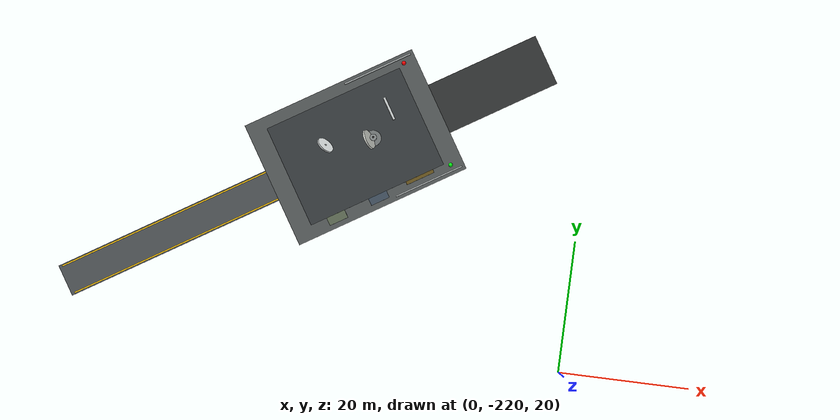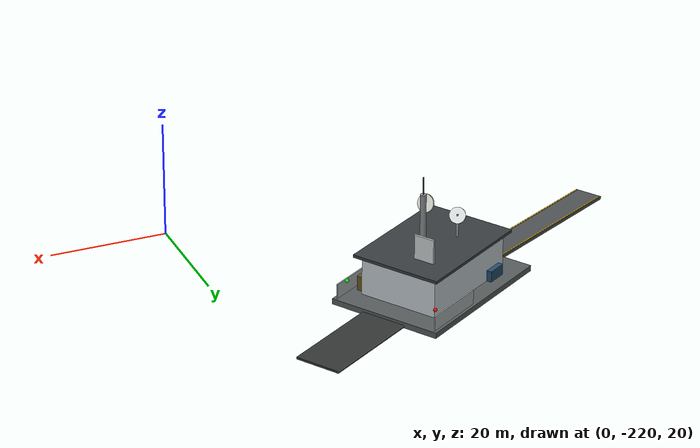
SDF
<sdf version="1.10">
 <world name="heterogeneous_332_vrx_water">
  <plugin filename="gz-sim-physics-system" name="gz::sim::systems::Physics"/>
  <plugin filename="gz-sim-user-commands-system" name="gz::sim::systems::UserCommands"/>
  <plugin filename="gz-sim-scene-broadcaster-system" name="gz::sim::systems::SceneBroadcaster"/>
  <plugin filename="gz-sim-contact-system" name="gz::sim::systems::Contact"/>
  <plugin filename="gz-sim-sensors-system" name="gz::sim::systems::Sensors">
   <render_engine>ogre2</render_engine>
  </plugin>
  <plugin filename="gz-sim-imu-system" name="gz::sim::systems::Imu"/>
  <plugin filename="gz-sim-air-pressure-system" name="gz::sim::systems::AirPressure"/>
  <plugin filename="gz-sim-magnetometer-system" name="gz::sim::systems::Magnetometer"/>
  <plugin filename="gz-sim-navsat-system" name="gz::sim::systems::NavSat"/>
  <plugin filename="libVrxWavefieldPublisher.so" name="vrx::VrxWavefieldPublisher">
   <publish_period>2.0</publish_period>
   <wavefield>
    <topic>/vrx/wavefield/parameters</topic>
    <size>1050 900</size>
    <cell_count>175 150</cell_count>
    <wave>
     <model>PMS</model>
     <number>3</number>
     <period>6.0</period>
     <scale>1.35</scale>
     <gain>0.65</gain>
     <direction>0.25</direction>
     <angle>0.5</angle>
     <steepness>0.35</steepness>
     <tau>2.0</tau>
    </wave>
   </wavefield>
  </plugin>
  <plugin filename="gz-sim-buoyancy-system" name="gz::sim::systems::Buoyancy">
   <uniform_fluid_density>1025</uniform_fluid_density>
   <enable>usv_01::hull</enable>
   <enable>usv_02::hull</enable>
   <enable>usv_03::hull</enable>
  </plugin>
  <physics type="ode">
   <max_step_size>0.004</max_step_size>
   <real_time_factor>1</real_time_factor>
   <real_time_update_rate>250</real_time_update_rate>
  </physics>
  <gravity>0 0 -9.8</gravity>
  <scene>
   <grid>false</grid>
   <ambient>0.75 0.78 0.82 1</ambient>
   <background>0.82 0.9 0.96 1</background>
   <shadows>true</shadows>
  </scene>
  <spherical_coordinates>
   <surface_model>EARTH_WGS84</surface_model>
   <world_frame_orientation>ENU</world_frame_orientation>
   <latitude_deg>47.397971057728974</latitude_deg>
   <longitude_deg>8.5461637398001464</longitude_deg>
   <elevation>0</elevation>
   <heading_deg>0</heading_deg>
  </spherical_coordinates>
  <model name="ocean_plane">
   <static>true</static>
   <link name="ocean_link">
    <collision name="ocean_collision">
     <geometry><plane><normal>0 0 1</normal><size>1050 900</size></plane></geometry>
    </collision>
   </link>
  </model>
  <include>
   <uri>model://mountain_shore_invisible_collision</uri>
   <name>mountain_shore_invisible_collision</name>
   <pose>0 0 8 3.141592653589793 0 0</pose>
  </include>
  <include>
   <uri>model://mountain_shore_command_base</uri>
   <name>shore_command_base</name>
   <pose>-35 -190 17.5 0 0 0.559</pose>
  </include>
  <light name="sun" type="directional">
   <pose>0 0 100 0 0 0</pose>
   <intensity>1.1</intensity>
   <direction>-0.35 0.2 -0.92</direction>
   <diffuse>0.92 0.92 0.88 1</diffuse>
   <specular>0.25 0.25 0.25 1</specular>
  </light>
 </world>
</sdf>

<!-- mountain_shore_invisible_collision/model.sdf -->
<sdf version="1.9">
  <model name="Mountain_Shore_Invisible_Collision">
    <static>true</static>
    <link name="mountain_shore_boundary">
      <collision name="Mountain_Shore_Collision_01"><pose>-332.08 -241.36 4 0 0 0.0677</pose><geometry><box><size>146.34 5 12</size></box></geometry></collision>
      <collision name="Mountain_Shore_Collision_02"><pose>-244.89 -242.84 4 0 0 -0.3117</pose><geometry><box><size>49.34 5 12</size></box></geometry></collision>
      <collision name="Mountain_Shore_Collision_03"><pose>-191.88 -216.61 4 0 0 0.8234</pose><geometry><box><size>93.85 5 12</size></box></geometry></collision>
      <collision name="Mountain_Shore_Collision_04"><pose>-145.65 -179.86 4 0 0 0.3268</pose><geometry><box><size>47.49 5 12</size></box></geometry></collision>
      <collision name="Mountain_Shore_Collision_05"><pose>-126.27 -149.94 4 0 0 1.2692</pose><geometry><box><size>46.96 5 12</size></box></geometry></collision>
      <collision name="Mountain_Shore_Collision_06"><pose>-91.87 -147.04 4 0 0 -0.3897</pose><geometry><box><size>64.89 5 12</size></box></geometry></collision>
      <collision name="Mountain_Shore_Collision_07"><pose>-19.09 -126.09 4 0 0 0.6336</pose><geometry><box><size>113.66 5 12</size></box></geometry></collision>
      <collision name="Mountain_Shore_Collision_08"><pose>54.42 -92.67 4 0 0 0.0881</pose><geometry><box><size>74.16 5 12</size></box></geometry></collision>
      <collision name="Mountain_Shore_Collision_09"><pose>155.82 -61.20 4 0 0 0.3979</pose><geometry><box><size>153.89 5 12</size></box></geometry></collision>
      <collision name="Mountain_Shore_Collision_10"><pose>228.66 2.89 4 0 0 1.4737</pose><geometry><box><size>73.35 5 12</size></box></geometry></collision>
      <collision name="Mountain_Shore_Collision_11"><pose>290.07 97.94 4 0 0 0.8303</pose><geometry><box><size>183.69 5 12</size></box></geometry></collision>
      <collision name="Mountain_Shore_Collision_12"><pose>343.00 173.03 4 0 0 2.4954</pose><geometry><box><size>22.50 5 12</size></box></geometry></collision>
      <collision name="Mountain_Shore_Collision_13"><pose>360.34 185.13 4 0 0 0.5488</pose><geometry><box><size>62.97 5 12</size></box></geometry></collision>
      <collision name="Mountain_Shore_Collision_14"><pose>392.71 224.76 4 0 0 1.2687</pose><geometry><box><size>56.32 5 12</size></box></geometry></collision>
      <collision name="Mountain_Shore_Collision_15"><pose>399.96 271.69 4 0 0 1.5762</pose><geometry><box><size>53.30 5 12</size></box></geometry></collision>
      <collision name="Mountain_Shore_Collision_16"><pose>367.74 312.46 4 0 0 2.6881</pose><geometry><box><size>74.41 5 12</size></box></geometry></collision>
      <collision name="Mountain_Shore_Collision_17"><pose>264.69 290.91 4 0 0 -2.6637</pose><geometry><box><size>164.81 5 12</size></box></geometry></collision>
      <collision name="Mountain_Shore_Collision_18"><pose>135.92 261.72 4 0 0 3.0370</pose><geometry><box><size>131.47 5 12</size></box></geometry></collision>
      <collision name="Mountain_Shore_Collision_19"><pose>20.50 254.76 4 0 0 -2.8941</pose><geometry><box><size>116.56 5 12</size></box></geometry></collision>
      <collision name="Mountain_Shore_Collision_20"><pose>-65.82 190.91 4 0 0 -2.1409</pose><geometry><box><size>124.02 5 12</size></box></geometry></collision>
      <collision name="Mountain_Shore_Collision_21"><pose>-87.88 102.00 4 0 0 -1.3125</pose><geometry><box><size>84.31 5 12</size></box></geometry></collision>
      <collision name="Mountain_Shore_Collision_22"><pose>-61.73 62.98 4 0 0 -0.5611</pose><geometry><box><size>32.60 5 12</size></box></geometry></collision>
      <collision name="Mountain_Shore_Collision_23"><pose>-73.05 26.77 4 0 0 -2.0897</pose><geometry><box><size>73.09 5 12</size></box></geometry></collision>
      <collision name="Mountain_Shore_Collision_24"><pose>-92.87 -31.93 4 0 0 -1.6800</pose><geometry><box><size>66.12 5 12</size></box></geometry></collision>
      <collision name="Mountain_Shore_Collision_25"><pose>-114.19 -73.24 4 0 0 -2.8049</pose><geometry><box><size>57.69 5 12</size></box></geometry></collision>
      <collision name="Mountain_Shore_Collision_26"><pose>-142.10 -92.96 4 0 0 -1.5143</pose><geometry><box><size>38.18 5 12</size></box></geometry></collision>
      <collision name="Mountain_Shore_Collision_27"><pose>-151.46 -90.64 4 0 0 2.0818</pose><geometry><box><size>51.84 5 12</size></box></geometry></collision>
      <collision name="Mountain_Shore_Collision_28"><pose>-174.88 -80.84 4 0 0 -2.3288</pose><geometry><box><size>46.63 5 12</size></box></geometry></collision>
      <collision name="Mountain_Shore_Collision_29"><pose>-201.18 -98.86 4 0 0 2.9660</pose><geometry><box><size>38.93 5 12</size></box></geometry></collision>
      <collision name="Mountain_Shore_Collision_30"><pose>-223.18 -99.83 4 0 0 -1.9625</pose><geometry><box><size>27.79 5 12</size></box></geometry></collision>
      <collision name="Mountain_Shore_Collision_31"><pose>-258.70 -113.46 4 0 0 3.1122</pose><geometry><box><size>78.69 5 12</size></box></geometry></collision>
      <collision name="Mountain_Shore_Collision_32"><pose>-309.91 -114.00 4 0 0 -2.5678</pose><geometry><box><size>40.93 5 12</size></box></geometry></collision>
      <collision name="Mountain_Shore_Collision_33"><pose>-324.77 -139.32 4 0 0 -1.5089</pose><geometry><box><size>33.61 5 12</size></box></geometry></collision>
      <collision name="Mountain_Shore_Collision_34"><pose>-363.64 -194.27 4 0 0 -2.3049</pose><geometry><box><size>129.48 5 12</size></box></geometry></collision>

      <!-- Cylinder joins bridge the different sea-side offsets at every turn. -->
      <collision name="Mountain_Shore_Join_01"><pose>-401.36 -242.05 4 0 0 0</pose><geometry><cylinder><radius>7</radius><length>12</length></cylinder></geometry></collision>
      <collision name="Mountain_Shore_Join_02"><pose>-263.34 -232.70 4 0 0 0</pose><geometry><cylinder><radius>7</radius><length>12</length></cylinder></geometry></collision>
      <collision name="Mountain_Shore_Join_03"><pose>-223.99 -245.37 4 0 0 0</pose><geometry><cylinder><radius>7</radius><length>12</length></cylinder></geometry></collision>
      <collision name="Mountain_Shore_Join_04"><pose>-165.64 -182.41 4 0 0 0</pose><geometry><cylinder><radius>7</radius><length>12</length></cylinder></geometry></collision>
      <collision name="Mountain_Shore_Join_05"><pose>-128.24 -169.73 4 0 0 0</pose><geometry><cylinder><radius>7</radius><length>12</length></cylinder></geometry></collision>
      <collision name="Mountain_Shore_Join_06"><pose>-116.66 -132.53 4 0 0 0</pose><geometry><cylinder><radius>7</radius><length>12</length></cylinder></geometry></collision>
      <collision name="Mountain_Shore_Join_07"><pose>-64.04 -154.14 4 0 0 0</pose><geometry><cylinder><radius>7</radius><length>12</length></cylinder></geometry></collision>
      <collision name="Mountain_Shore_Join_08"><pose>21.12 -91.59 4 0 0 0</pose><geometry><cylinder><radius>7</radius><length>12</length></cylinder></geometry></collision>
      <collision name="Mountain_Shore_Join_09"><pose>87.02 -85.77 4 0 0 0</pose><geometry><cylinder><radius>7</radius><length>12</length></cylinder></geometry></collision>
      <collision name="Mountain_Shore_Join_10"><pose>221.51 -29.25 4 0 0 0</pose><geometry><cylinder><radius>7</radius><length>12</length></cylinder></geometry></collision>
      <collision name="Mountain_Shore_Join_11"><pose>227.85 35.80 4 0 0 0</pose><geometry><cylinder><radius>7</radius><length>12</length></cylinder></geometry></collision>
      <collision name="Mountain_Shore_Join_12"><pose>346.38 165.47 4 0 0 0</pose><geometry><cylinder><radius>7</radius><length>12</length></cylinder></geometry></collision>
      <collision name="Mountain_Shore_Join_13"><pose>334.81 174.20 4 0 0 0</pose><geometry><cylinder><radius>7</radius><length>12</length></cylinder></geometry></collision>
      <collision name="Mountain_Shore_Join_14"><pose>381.71 202.88 4 0 0 0</pose><geometry><cylinder><radius>7</radius><length>12</length></cylinder></geometry></collision>
      <collision name="Mountain_Shore_Join_15"><pose>396.08 249.01 4 0 0 0</pose><geometry><cylinder><radius>7</radius><length>12</length></cylinder></geometry></collision>
      <collision name="Mountain_Shore_Join_16"><pose>395.84 294.32 4 0 0 0</pose><geometry><cylinder><radius>7</radius><length>12</length></cylinder></geometry></collision>
      <collision name="Mountain_Shore_Join_17"><pose>336.15 323.41 4 0 0 0</pose><geometry><cylinder><radius>7</radius><length>12</length></cylinder></geometry></collision>
      <collision name="Mountain_Shore_Join_18"><pose>196.90 251.30 4 0 0 0</pose><geometry><cylinder><radius>7</radius><length>12</length></cylinder></geometry></collision>
      <collision name="Mountain_Shore_Join_19"><pose>74.11 264.18 4 0 0 0</pose><geometry><cylinder><radius>7</radius><length>12</length></cylinder></geometry></collision>
      <collision name="Mountain_Shore_Join_20"><pose>-31.15 237.58 4 0 0 0</pose><geometry><cylinder><radius>7</radius><length>12</length></cylinder></geometry></collision>
      <collision name="Mountain_Shore_Join_21"><pose>-93.76 139.91 4 0 0 0</pose><geometry><cylinder><radius>7</radius><length>12</length></cylinder></geometry></collision>
      <collision name="Mountain_Shore_Join_22"><pose>-74.27 66.14 4 0 0 0</pose><geometry><cylinder><radius>7</radius><length>12</length></cylinder></geometry></collision>
      <collision name="Mountain_Shore_Join_23"><pose>-53.44 53.05 4 0 0 0</pose><geometry><cylinder><radius>7</radius><length>12</length></cylinder></geometry></collision>
      <collision name="Mountain_Shore_Join_24"><pose>-85.72 -3.48 4 0 0 0</pose><geometry><cylinder><radius>7</radius><length>12</length></cylinder></geometry></collision>
      <collision name="Mountain_Shore_Join_25"><pose>-92.06 -61.25 4 0 0 0</pose><geometry><cylinder><radius>7</radius><length>12</length></cylinder></geometry></collision>
      <collision name="Mountain_Shore_Join_26"><pose>-138.96 -77.67 4 0 0 0</pose><geometry><cylinder><radius>7</radius><length>12</length></cylinder></geometry></collision>
      <collision name="Mountain_Shore_Join_27"><pose>-137.25 -107.80 4 0 0 0</pose><geometry><cylinder><radius>7</radius><length>12</length></cylinder></geometry></collision>
      <collision name="Mountain_Shore_Join_28"><pose>-158.69 -69.56 4 0 0 0</pose><geometry><cylinder><radius>7</radius><length>12</length></cylinder></geometry></collision>
      <collision name="Mountain_Shore_Join_29"><pose>-185.25 -97.62 4 0 0 0</pose><geometry><cylinder><radius>7</radius><length>12</length></cylinder></geometry></collision>
      <collision name="Mountain_Shore_Join_30"><pose>-215.71 -92.22 4 0 0 0</pose><geometry><cylinder><radius>7</radius><length>12</length></cylinder></geometry></collision>
      <collision name="Mountain_Shore_Join_31"><pose>-223.26 -110.50 4 0 0 0</pose><geometry><cylinder><radius>7</radius><length>12</length></cylinder></geometry></collision>
      <collision name="Mountain_Shore_Join_32"><pose>-293.91 -108.42 4 0 0 0</pose><geometry><cylinder><radius>7</radius><length>12</length></cylinder></geometry></collision>
      <collision name="Mountain_Shore_Join_33"><pose>-321.57 -126.30 4 0 0 0</pose><geometry><cylinder><radius>7</radius><length>12</length></cylinder></geometry></collision>
      <collision name="Mountain_Shore_Join_34"><pose>-319.98 -151.86 4 0 0 0</pose><geometry><cylinder><radius>7</radius><length>12</length></cylinder></geometry></collision>
    </link>
  </model>
</sdf>

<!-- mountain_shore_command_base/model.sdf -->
<sdf version="1.9">
  <model name="Shore_Command_Base">
    <static>true</static>
    <link name="base_link">
      <!-- 山坡架空基础、控制楼与屋顶。 -->
      <collision name="foundation_collision"><pose>0 0 0.5 0 0 0</pose><geometry><box><size>28 20 1</size></box></geometry></collision>
      <visual name="foundation"><pose>0 0 0.5 0 0 0</pose><geometry><box><size>28 20 1</size></box></geometry><material><ambient>0.16 0.17 0.17 1</ambient><diffuse>0.34 0.36 0.36 1</diffuse></material></visual>
      <collision name="control_building_collision"><pose>0 0 4.2 0 0 0</pose><geometry><box><size>20 14 7.2</size></box></geometry></collision>
      <visual name="control_building"><pose>0 0 4.2 0 0 0</pose><geometry><box><size>20 14 7.2</size></box></geometry><material><ambient>0.52 0.56 0.58 1</ambient><diffuse>0.78 0.82 0.84 1</diffuse><specular>0.25 0.28 0.30 1</specular></material></visual>
      <collision name="roof_collision"><pose>0 0 8 0 0 0</pose><geometry><box><size>22 16 0.5</size></box></geometry></collision>
      <visual name="roof"><pose>0 0 8 0 0 0</pose><geometry><box><size>22 16 0.5</size></box></geometry><material><ambient>0.10 0.11 0.12 1</ambient><diffuse>0.22 0.24 0.25 1</diffuse></material></visual>

      <!-- UAV-USV BASE 标牌用发光面板表示。 -->
      <visual name="UAV_USV_BASE_sign"><pose>-10.15 0 5 0 0 0</pose><geometry><box><size>0.22 8 2.1</size></box></geometry><material><ambient>0.02 0.18 0.30 1</ambient><diffuse>0.04 0.38 0.60 1</diffuse><emissive>0.01 0.12 0.25 1</emissive></material></visual>
      <visual name="window_front"><pose>-10.18 -4 4.2 0 0 0</pose><geometry><box><size>0.12 2.5 2.2</size></box></geometry><material><ambient>0.02 0.10 0.16 1</ambient><diffuse>0.03 0.23 0.36 1</diffuse><specular>0.55 0.65 0.75 1</specular></material></visual>
      <visual name="window_rear"><pose>-10.18 4 4.2 0 0 0</pose><geometry><box><size>0.12 2.5 2.2</size></box></geometry><material><ambient>0.02 0.10 0.16 1</ambient><diffuse>0.03 0.23 0.36 1</diffuse></material></visual>

      <!-- 通信塔、天线和雷达盘均带简化碰撞。 -->
      <collision name="tower_collision"><pose>3 0 13 0 0 0</pose><geometry><cylinder><radius>0.5</radius><length>10</length></cylinder></geometry></collision>
      <visual name="tower"><pose>3 0 13 0 0 0</pose><geometry><cylinder><radius>0.5</radius><length>10</length></cylinder></geometry><material><ambient>0.22 0.23 0.23 1</ambient><diffuse>0.55 0.57 0.57 1</diffuse></material></visual>
      <visual name="radar_pedestal"><pose>3 0 8.5 0 0 0</pose><geometry><cylinder><radius>1.2</radius><length>0.5</length></cylinder></geometry><material><ambient>0.20 0.21 0.21 1</ambient><diffuse>0.48 0.50 0.50 1</diffuse></material></visual>
      <collision name="antenna_collision"><pose>3 0 19.5 0 0 0</pose><geometry><cylinder><radius>0.12</radius><length>3</length></cylinder></geometry></collision>
      <visual name="antenna"><pose>3 0 19.5 0 0 0</pose><geometry><cylinder><radius>0.12</radius><length>3</length></cylinder></geometry><material><ambient>0.05 0.05 0.05 1</ambient><diffuse>0.12 0.12 0.12 1</diffuse></material></visual>
      <collision name="radar_dish_collision"><pose>2.3 0 16.2 0 1.2 0</pose><geometry><cylinder><radius>1.5</radius><length>0.25</length></cylinder></geometry></collision>
      <visual name="radar_dish"><pose>2.3 0 16.2 0 1.2 0</pose><geometry><cylinder><radius>1.5</radius><length>0.25</length></cylinder></geometry><material><ambient>0.68 0.69 0.67 1</ambient><diffuse>0.90 0.91 0.88 1</diffuse></material></visual>

      <!-- 电源箱、通信柜和控制设备。 -->
      <collision name="power_box_collision"><pose>-7 -8 1.8 0 0 0</pose><geometry><box><size>3 2.5 2.6</size></box></geometry></collision>
      <visual name="power_box"><pose>-7 -8 1.8 0 0 0</pose><geometry><box><size>3 2.5 2.6</size></box></geometry><material><ambient>0.18 0.20 0.17 1</ambient><diffuse>0.38 0.43 0.34 1</diffuse></material></visual>
      <collision name="communication_cabinet_collision"><pose>0 -8 1.7 0 0 0</pose><geometry><box><size>3 2.2 2.4</size></box></geometry></collision>
      <visual name="communication_cabinet"><pose>0 -8 1.7 0 0 0</pose><geometry><box><size>3 2.2 2.4</size></box></geometry><material><ambient>0.12 0.15 0.18 1</ambient><diffuse>0.26 0.32 0.38 1</diffuse></material></visual>

      <!-- 连接基地基础与三层平台顶层的缓坡金属栈桥。 -->
      <collision name="platform_bridge_collision"><pose>-24 0 -1.5 0 -0.06 0</pose><geometry><box><size>50 5 0.5</size></box></geometry></collision>
      <visual name="platform_bridge"><pose>-24 0 -1.5 0 -0.06 0</pose><geometry><box><size>50 5 0.5</size></box></geometry><material><ambient>0.14 0.15 0.15 1</ambient><diffuse>0.31 0.33 0.34 1</diffuse><specular>0.4 0.42 0.44 1</specular></material></visual>
      <visual name="bridge_warning_left"><pose>-24 2.25 -1.18 0 -0.06 0</pose><geometry><box><size>49 0.20 0.08</size></box></geometry><material><ambient>0.9 0.58 0.02 1</ambient><diffuse>1 0.78 0.04 1</diffuse></material></visual>
      <visual name="bridge_warning_right"><pose>-24 -2.25 -1.18 0 -0.06 0</pose><geometry><box><size>49 0.20 0.08</size></box></geometry><material><ambient>0.9 0.58 0.02 1</ambient><diffuse>1 0.78 0.04 1</diffuse></material></visual>

      <collision name="security_fence_collision"><pose>8 9.4 2 0 0 0</pose><geometry><box><size>11 0.2 3</size></box></geometry></collision>
      <visual name="security_fence"><pose>8 9.4 2 0 0 0</pose><geometry><box><size>11 0.2 3</size></box></geometry><material><ambient>0.34 0.35 0.35 1</ambient><diffuse>0.68 0.70 0.70 1</diffuse></material></visual>
      <collision name="security_fence_south_collision"><pose>8 -9.4 2 0 0 0</pose><geometry><box><size>11 0.2 3</size></box></geometry></collision>
      <visual name="security_fence_south"><pose>8 -9.4 2 0 0 0</pose><geometry><box><size>11 0.2 3</size></box></geometry><material><ambient>0.34 0.35 0.35 1</ambient><diffuse>0.68 0.70 0.70 1</diffuse></material></visual>

      <!-- 卫星锅、阵列天线和备用电源使基站具备完整通信调度外观。 -->
      <collision name="satellite_mast_collision"><pose>-4 2 10.2 0 0 0</pose><geometry><cylinder><radius>0.18</radius><length>4</length></cylinder></geometry></collision>
      <visual name="satellite_mast"><pose>-4 2 10.2 0 0 0</pose><geometry><cylinder><radius>0.18</radius><length>4</length></cylinder></geometry><material><ambient>0.30 0.31 0.31 1</ambient><diffuse>0.66 0.68 0.68 1</diffuse><specular>0.7 0.7 0.7 1</specular></material></visual>
      <collision name="satellite_dish_collision"><pose>-4 2 12.0 0 1.05 0.4</pose><geometry><cylinder><radius>1.35</radius><length>0.22</length></cylinder></geometry></collision>
      <visual name="satellite_dish"><pose>-4 2 12.0 0 1.05 0.4</pose><geometry><cylinder><radius>1.35</radius><length>0.22</length></cylinder></geometry><material><ambient>0.70 0.72 0.72 1</ambient><diffuse>0.92 0.94 0.94 1</diffuse><specular>0.75 0.78 0.80 1</specular></material></visual>
      <collision name="antenna_array_collision"><pose>7 3 10.8 0 0 0</pose><geometry><box><size>0.35 3.6 4.2</size></box></geometry></collision>
      <visual name="Antenna_Array"><pose>7 3 10.8 0 0 0</pose><geometry><box><size>0.35 3.6 4.2</size></box></geometry><material><ambient>0.42 0.43 0.43 1</ambient><diffuse>0.82 0.84 0.84 1</diffuse><specular>0.7 0.72 0.74 1</specular></material></visual>
      <collision name="backup_generator_collision"><pose>7 -7 2.0 0 0 0</pose><geometry><box><size>4.5 3.0 3.0</size></box></geometry></collision>
      <visual name="backup_generator"><pose>7 -7 2.0 0 0 0</pose><geometry><box><size>4.5 3.0 3.0</size></box></geometry><material><ambient>0.20 0.16 0.06 1</ambient><diffuse>0.42 0.34 0.12 1</diffuse></material></visual>
      <collision name="outside_control_console_collision"><pose>-7 7 1.7 0 0 0</pose><geometry><box><size>3.4 1.8 2.4</size></box></geometry></collision>
      <visual name="outside_control_console"><pose>-7 7 1.7 0 0 0</pose><geometry><box><size>3.4 1.8 2.4</size></box></geometry><material><ambient>0.08 0.16 0.22 1</ambient><diffuse>0.14 0.30 0.42 1</diffuse><specular>0.35 0.40 0.45 1</specular></material></visual>
      <collision name="shore_access_road_collision"><pose>23 0 0.3 0 0 0</pose><geometry><box><size>18 8 0.35</size></box></geometry></collision>
      <visual name="shore_access_road"><pose>23 0 0.3 0 0 0</pose><geometry><box><size>18 8 0.35</size></box></geometry><material><ambient>0.10 0.10 0.10 1</ambient><diffuse>0.20 0.21 0.21 1</diffuse></material></visual>
      <visual name="base_signal_red"><pose>12 8.5 3.8 0 0 0</pose><geometry><sphere><radius>0.32</radius></sphere></geometry><material><ambient>0.8 0.01 0.01 1</ambient><diffuse>1 0.02 0.02 1</diffuse><emissive>1 0.01 0.01 1</emissive></material></visual>
      <visual name="base_signal_green"><pose>12 -8.5 3.8 0 0 0</pose><geometry><sphere><radius>0.32</radius></sphere></geometry><material><ambient>0.01 0.7 0.04 1</ambient><diffuse>0.02 1 0.08 1</diffuse><emissive>0.01 0.9 0.04 1</emissive></material></visual>
      <light name="base_signal_light" type="point"><pose>3 0 21.5 0 0 0</pose><cast_shadows>false</cast_shadows><intensity>2</intensity><diffuse>1 0.04 0.03 1</diffuse><attenuation><range>90</range><constant>0.7</constant><linear>0.025</linear><quadratic>0.001</quadratic></attenuation></light>
      <light name="base_flood_light" type="point"><pose>-8 0 9.5 0 0 0</pose><cast_shadows>false</cast_shadows><intensity>1.8</intensity><diffuse>0.92 0.96 1 1</diffuse><attenuation><range>65</range><constant>0.8</constant><linear>0.035</linear><quadratic>0.0015</quadratic></attenuation></light>
    </link>
  </model>
</sdf>
